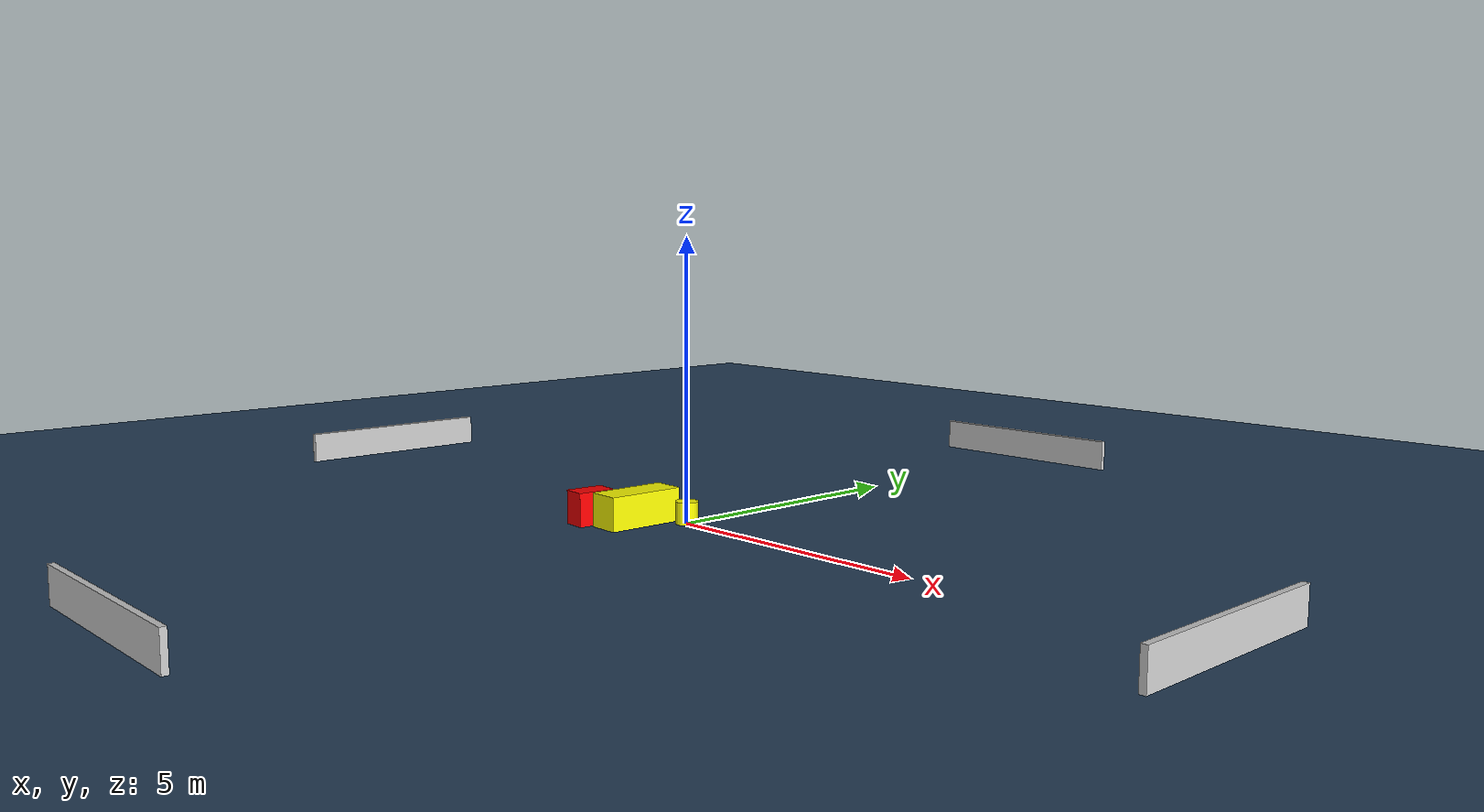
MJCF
<?xml version="1.0" ?>
<mujoco model="generated_environment">
  <option timestep="0.01" integrator="RK4" cone="elliptic"/>
  <default>
    <geom density="1"/>
  </default>
  <asset>
    <texture builtin="gradient" height="3072" name="skybox" rgb1="0.3 0.5 0.7" rgb2="0 0 0" type="skybox" width="512"/>
    <texture builtin="checker" height="300" name="groundplane" rgb1="0.2 0.3 0.4" rgb2="0.1 0.2 0.3" type="2d" width="300"/>
    <material name="groundplane" reflectance="0.2" texrepeat="5 5" texture="groundplane"/>
  </asset>
  <worldbody>
    <light dir="0 0 -1" directional="true" pos="0 0 1.5"/>
    <geom condim="3" friction="0.5 0.005 0.001" material="groundplane" name="floor" pos="0 0 0" size="0 0 0.05" type="plane"/>
    <body name="walls">
      <geom name="wall_1" condim="4" pos="-10.0 0.0 0.3" rgba="0.800000011920929 0.800000011920929 0.800000011920929 1.0" size="0.05 2.0 0.3" type="box"/>
      <geom name="wall_2" condim="4" pos="10.0 0.0 0.3" rgba="0.800000011920929 0.800000011920929 0.800000011920929 1.0" size="0.05 2.0 0.3" type="box"/>
      <geom name="wall_3" condim="4" pos="0.0 -10.0 0.3" rgba="0.800000011920929 0.800000011920929 0.800000011920929 1.0" size="2.0 0.05 0.3" type="box"/>
      <geom name="wall_4" condim="4" pos="0.0 10.0 0.3" rgba="0.800000011920929 0.800000011920929 0.800000011920929 1.0" size="2.0 0.05 0.3" type="box"/>
    </body>
    <body name="robot">
      <joint name="joint_x" type="slide" pos="0 0 0" axis="1 0 0"/>
      <joint name="joint_y" type="slide" pos="0 0 0" axis="0 1 0"/>
      <geom name="robot" type="cylinder" pos="0.0 0.0 0.2" size="0.2 0.2 0.0" mass="5.0" friction="1.0 0.005 0.0001" condim="4" rgba="1.0 1.0 0.0 1.0"/>
    </body>
    <body name="obstacle_1_movable">
      <geom name="obstacle_1_movable" condim="4" pos="-0.568946942549532 -0.6686134238753824 0.3" euler="0 0 268.1285077369002" friction="0.0 0.005 0.001" rgba="1.0 1.0 0.0 1.0" size="0.7251035788838585 0.2891910483727681 0.3" type="box" mass="0.1"/>
      <joint type="free"/>
    </body>
    <body name="obstacle_2_static">
      <geom name="obstacle_2_static" condim="4" pos="-1.146678410986821 -1.2390944471650984 0.3" euler="0 0 84.40665334357092" friction="0.0 0.005 0.001" rgba="1.0 0.0 0.0 1.0" size="0.3492087580464114 0.21182578790606613 0.3" type="box"/>
    </body>
  </worldbody>
  <actuator>
    <motor name="actuator_x" joint="joint_x" gear="1" ctrlrange="-1 1"/>
    <motor name="actuator_y" joint="joint_y" gear="1" ctrlrange="-1 1"/>
  </actuator>
</mujoco>
